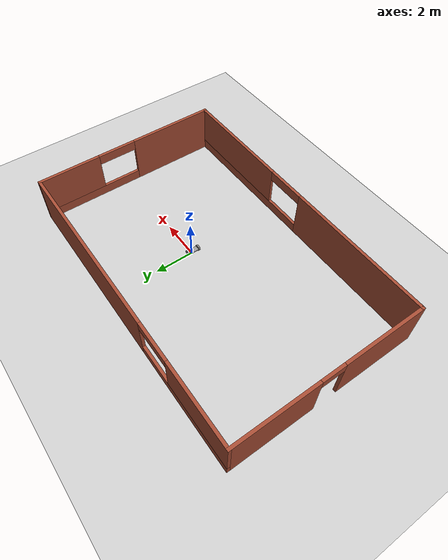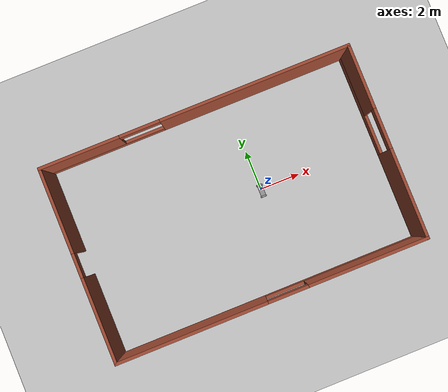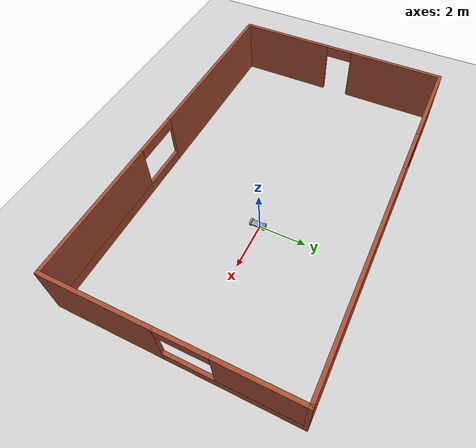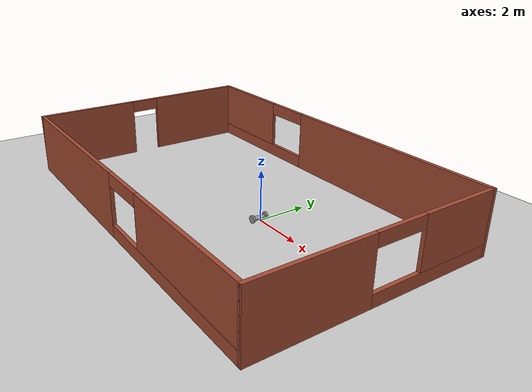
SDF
<sdf version="1.6">
 <world name="default">
  <model name="ground_plane">
   <static>1</static>
   <link name="link">
    <collision name="collision">
     <geometry><plane><normal>0 0 1</normal><size>100 100</size></plane></geometry>
     <surface><friction><ode><mu>100</mu><mu2>50</mu2></ode></friction></surface>
    </collision>
    <visual name="visual">
     <cast_shadows>0</cast_shadows>
     <geometry><plane><normal>0 0 1</normal><size>100 100</size></plane></geometry>
     <material>
      <script><uri>file://media/materials/scripts/gazebo.material</uri><name>Gazebo/Grey</name></script>
     </material>
    </visual>
   </link>
  </model>
  <model name="myrobot">
   <link name="link_2">
    <pose>0 0.290015 0 1.5707 -0 0</pose>
    <inertial>
     <mass>0.0501056</mass>
     <inertia>
      <ixx>0.00149856</ixx>
      <ixy>0</ixy>
      <ixz>0</ixz>
      <iyy>0.00149856</iyy>
      <iyz>0</iyz>
      <izz>0.00289929</izz>
     </inertia>
    </inertial>
    <visual name="visual">
     <geometry><cylinder><radius>0.15</radius><length>0.0800003</length></cylinder></geometry>
     <material>
      <lighting>1</lighting>
      <script><uri>file://media/materials/scripts/gazebo.material</uri><name>Gazebo/Grey</name></script>
      <ambient>0.3 0.3 0.3 1</ambient>
      <diffuse>0.7 0.7 0.7 1</diffuse>
      <specular>0.01 0.01 0.01 1</specular>
      <emissive>0 0 0 1</emissive>
      <shader type="vertex"><normal_map>__default__</normal_map></shader>
     </material>
    </visual>
    <collision name="collision">
     <geometry><cylinder><radius>0.15</radius><length>0.08</length></cylinder></geometry>
     <surface>
      <friction>
       <ode><mu>1</mu><mu2>1</mu2><fdir1>0 0 0</fdir1><slip1>0</slip1><slip2>0</slip2></ode>
       <torsional>
        <coefficient>1</coefficient>
        <patch_radius>0</patch_radius>
        <surface_radius>0</surface_radius>
        <use_patch_radius>1</use_patch_radius>
        <ode><slip>0</slip></ode>
       </torsional>
      </friction>
      <bounce><restitution_coefficient>0</restitution_coefficient><threshold>1e+06</threshold></bounce>
      <contact>
       <collide_without_contact>0</collide_without_contact>
       <collide_without_contact_bitmask>1</collide_without_contact_bitmask>
       <collide_bitmask>1</collide_bitmask>
       <ode>
        <soft_cfm>0</soft_cfm>
        <soft_erp>0.2</soft_erp>
        <kp>1e+13</kp>
        <kd>1</kd>
        <max_vel>0.01</max_vel>
        <min_depth>0</min_depth>
       </ode>
       <bullet>
        <split_impulse>1</split_impulse>
        <split_impulse_penetration_threshold>-0.01</split_impulse_penetration_threshold>
        <soft_cfm>0</soft_cfm>
        <soft_erp>0.2</soft_erp>
        <kp>1e+13</kp>
        <kd>1</kd>
       </bullet>
      </contact>
     </surface>
    </collision>
   </link>
   <link name="link_2_clone">
    <pose>0 -0.290014 0 1.5707 -0 0</pose>
    <inertial>
     <mass>0.0501056</mass>
     <inertia>
      <ixx>0.00149856</ixx>
      <ixy>0</ixy>
      <ixz>0</ixz>
      <iyy>0.00149856</iyy>
      <iyz>0</iyz>
      <izz>0.00289929</izz>
     </inertia>
    </inertial>
    <visual name="visual">
     <geometry><cylinder><radius>0.15</radius><length>0.0800003</length></cylinder></geometry>
     <material>
      <lighting>1</lighting>
      <script><uri>file://media/materials/scripts/gazebo.material</uri><name>Gazebo/Grey</name></script>
      <ambient>0.3 0.3 0.3 1</ambient>
      <diffuse>0.7 0.7 0.7 1</diffuse>
      <specular>0.01 0.01 0.01 1</specular>
      <emissive>0 0 0 1</emissive>
      <shader type="vertex"><normal_map>__default__</normal_map></shader>
     </material>
    </visual>
    <collision name="collision">
     <geometry><cylinder><radius>0.15</radius><length>0.08</length></cylinder></geometry>
     <surface>
      <friction>
       <ode><mu>1</mu><mu2>1</mu2><fdir1>0 0 0</fdir1><slip1>0</slip1><slip2>0</slip2></ode>
       <torsional>
        <coefficient>1</coefficient>
        <patch_radius>0</patch_radius>
        <surface_radius>0</surface_radius>
        <use_patch_radius>1</use_patch_radius>
        <ode><slip>0</slip></ode>
       </torsional>
      </friction>
      <bounce><restitution_coefficient>0</restitution_coefficient><threshold>1e+06</threshold></bounce>
      <contact>
       <collide_without_contact>0</collide_without_contact>
       <collide_without_contact_bitmask>1</collide_without_contact_bitmask>
       <collide_bitmask>1</collide_bitmask>
       <ode>
        <soft_cfm>0</soft_cfm>
        <soft_erp>0.2</soft_erp>
        <kp>1e+13</kp>
        <kd>1</kd>
        <max_vel>0.01</max_vel>
        <min_depth>0</min_depth>
       </ode>
       <bullet>
        <split_impulse>1</split_impulse>
        <split_impulse_penetration_threshold>-0.01</split_impulse_penetration_threshold>
        <soft_cfm>0</soft_cfm>
        <soft_erp>0.2</soft_erp>
        <kp>1e+13</kp>
        <kd>1</kd>
       </bullet>
      </contact>
     </surface>
    </collision>
   </link>
   <link name="link_3">
    <inertial>
     <mass>1</mass>
     <inertia>
      <ixx>0.166667</ixx>
      <ixy>0</ixy>
      <ixz>0</ixz>
      <iyy>0.166667</iyy>
      <iyz>0</iyz>
      <izz>0.166667</izz>
     </inertia>
    </inertial>
    <visual name="visual">
     <geometry><box><size>0.25 0.5 0.05</size></box></geometry>
     <material>
      <lighting>1</lighting>
      <script><uri>file://media/materials/scripts/gazebo.material</uri><name>Gazebo/Grey</name></script>
      <ambient>0.3 0.3 0.3 1</ambient>
      <diffuse>0.7 0.7 0.7 1</diffuse>
      <specular>0.01 0.01 0.01 1</specular>
      <emissive>0 0 0 1</emissive>
      <shader type="vertex"><normal_map>__default__</normal_map></shader>
     </material>
    </visual>
    <collision name="collision">
     <geometry><box><size>0.25 0.5 0.05</size></box></geometry>
     <surface>
      <friction>
       <ode><mu>1</mu><mu2>1</mu2><fdir1>0 0 0</fdir1><slip1>0</slip1><slip2>0</slip2></ode>
       <torsional>
        <coefficient>1</coefficient>
        <patch_radius>0</patch_radius>
        <surface_radius>0</surface_radius>
        <use_patch_radius>1</use_patch_radius>
        <ode><slip>0</slip></ode>
       </torsional>
      </friction>
      <bounce><restitution_coefficient>0</restitution_coefficient><threshold>1e+06</threshold></bounce>
      <contact>
       <collide_without_contact>0</collide_without_contact>
       <collide_without_contact_bitmask>1</collide_without_contact_bitmask>
       <collide_bitmask>1</collide_bitmask>
       <ode>
        <soft_cfm>0</soft_cfm>
        <soft_erp>0.2</soft_erp>
        <kp>1e+13</kp>
        <kd>1</kd>
        <max_vel>0.01</max_vel>
        <min_depth>0</min_depth>
       </ode>
       <bullet>
        <split_impulse>1</split_impulse>
        <split_impulse_penetration_threshold>-0.01</split_impulse_penetration_threshold>
        <soft_cfm>0</soft_cfm>
        <soft_erp>0.2</soft_erp>
        <kp>1e+13</kp>
        <kd>1</kd>
       </bullet>
      </contact>
     </surface>
    </collision>
   </link>
   <joint name="link_2_JOINT_1" type="revolute">
    <parent>link_3</parent>
    <child>link_2_clone</child>
    <axis>
     <xyz>0 0 1</xyz>
     <use_parent_model_frame>0</use_parent_model_frame>
     <limit>
      <lower>-1.79769e+308</lower>
      <upper>1.79769e+308</upper>
      <effort>-1</effort>
      <velocity>-1</velocity>
     </limit>
     <dynamics>
      <spring_reference>0</spring_reference>
      <spring_stiffness>0</spring_stiffness>
      <damping>0</damping>
     </dynamics>
    </axis>
    <physics>
     <ode><limit><cfm>0</cfm><erp>0.2</erp></limit><suspension><cfm>0</cfm><erp>0.2</erp></suspension></ode>
    </physics>
   </joint>
   <joint name="link_3_JOINT_2" type="revolute">
    <parent>link_3</parent>
    <child>link_2</child>
    <axis>
     <xyz>0 0 1</xyz>
     <use_parent_model_frame>0</use_parent_model_frame>
     <limit>
      <lower>-1.79769e+308</lower>
      <upper>1.79769e+308</upper>
      <effort>-1</effort>
      <velocity>-1</velocity>
     </limit>
     <dynamics>
      <spring_reference>0</spring_reference>
      <spring_stiffness>0</spring_stiffness>
      <damping>0</damping>
     </dynamics>
    </axis>
    <physics>
     <ode><limit><cfm>0</cfm><erp>0.2</erp></limit><suspension><cfm>0</cfm><erp>0.2</erp></suspension></ode>
    </physics>
   </joint>
   <static>0</static>
   <pose>0 -0.078524 0.149997 5e-06 -0 0</pose>
  </model>
  <model name="mybuilding">
   <pose>-1.56724 -0.21095 0 0 -0 0</pose>
   <link name="Wall_3">
    <pose>0 -4.8 0 0 -0 0</pose>
    <visual name="Wall_3_Visual_0">
     <pose>-3.97859 0 1.25 0 -0 0</pose>
     <geometry><box><size>7.54281 0.15 2.5</size></box></geometry>
     <material>
      <script><uri>file://media/materials/scripts/gazebo.material</uri><name>Gazebo/Bricks</name></script>
      <ambient>1 1 1 1</ambient>
     </material>
    </visual>
    <collision name="Wall_3_Collision_0">
     <geometry><box><size>7.54281 0.15 2.5</size></box></geometry>
     <pose>-3.97859 0 1.25 0 -0 0</pose>
    </collision>
    <visual name="Wall_3_Visual_1">
     <pose>3.77141 0 0.25 0 -0 0</pose>
     <geometry><box><size>7.95719 0.15 0.5</size></box></geometry>
     <material>
      <script><uri>file://media/materials/scripts/gazebo.material</uri><name>Gazebo/Bricks</name></script>
      <ambient>1 1 1 1</ambient>
     </material>
    </visual>
    <collision name="Wall_3_Collision_1">
     <geometry><box><size>7.95719 0.15 0.5</size></box></geometry>
     <pose>3.77141 0 0.25 0 -0 0</pose>
    </collision>
    <visual name="Wall_3_Visual_2">
     <pose>4.77141 0 1.5 0 -0 0</pose>
     <geometry><box><size>5.95719 0.15 2</size></box></geometry>
     <material>
      <script><uri>file://media/materials/scripts/gazebo.material</uri><name>Gazebo/Bricks</name></script>
      <ambient>1 1 1 1</ambient>
     </material>
    </visual>
    <collision name="Wall_3_Collision_2">
     <geometry><box><size>5.95719 0.15 2</size></box></geometry>
     <pose>4.77141 0 1.5 0 -0 0</pose>
    </collision>
    <visual name="Wall_3_Visual_3">
     <pose>0.792814 0 2.25 0 -0 0</pose>
     <geometry><box><size>2 0.15 0.5</size></box></geometry>
     <material>
      <script><uri>file://media/materials/scripts/gazebo.material</uri><name>Gazebo/Bricks</name></script>
      <ambient>1 1 1 1</ambient>
     </material>
    </visual>
    <collision name="Wall_3_Collision_3">
     <geometry><box><size>2 0.15 0.5</size></box></geometry>
     <pose>0.792814 0 2.25 0 -0 0</pose>
    </collision>
   </link>
   <link name="Wall_4">
    <pose>7.675 0 0 0 -0 1.5708</pose>
    <visual name="Wall_4_Visual_0">
     <pose>-2.62217 0 1.25 0 -0 0</pose>
     <geometry><box><size>4.50566 0.15 2.5</size></box></geometry>
     <material>
      <script><uri>file://media/materials/scripts/gazebo.material</uri><name>Gazebo/Bricks</name></script>
      <ambient>1 1 1 1</ambient>
     </material>
    </visual>
    <collision name="Wall_4_Collision_0">
     <geometry><box><size>4.50566 0.15 2.5</size></box></geometry>
     <pose>-2.62217 0 1.25 0 -0 0</pose>
    </collision>
    <visual name="Wall_4_Visual_1">
     <pose>2.25283 0 0.25 0 -0 0</pose>
     <geometry><box><size>5.24434 0.15 0.5</size></box></geometry>
     <material>
      <script><uri>file://media/materials/scripts/gazebo.material</uri><name>Gazebo/Bricks</name></script>
      <ambient>1 1 1 1</ambient>
     </material>
    </visual>
    <collision name="Wall_4_Collision_1">
     <geometry><box><size>5.24434 0.15 0.5</size></box></geometry>
     <pose>2.25283 0 0.25 0 -0 0</pose>
    </collision>
    <visual name="Wall_4_Visual_2">
     <pose>3.25283 0 1.5 0 -0 0</pose>
     <geometry><box><size>3.24434 0.15 2</size></box></geometry>
     <material>
      <script><uri>file://media/materials/scripts/gazebo.material</uri><name>Gazebo/Bricks</name></script>
      <ambient>1 1 1 1</ambient>
     </material>
    </visual>
    <collision name="Wall_4_Collision_2">
     <geometry><box><size>3.24434 0.15 2</size></box></geometry>
     <pose>3.25283 0 1.5 0 -0 0</pose>
    </collision>
    <visual name="Wall_4_Visual_3">
     <pose>0.630664 0 2.25 0 -0 0</pose>
     <geometry><box><size>2 0.15 0.5</size></box></geometry>
     <material>
      <script><uri>file://media/materials/scripts/gazebo.material</uri><name>Gazebo/Bricks</name></script>
      <ambient>1 1 1 1</ambient>
     </material>
    </visual>
    <collision name="Wall_4_Collision_3">
     <geometry><box><size>2 0.15 0.5</size></box></geometry>
     <pose>0.630664 0 2.25 0 -0 0</pose>
    </collision>
   </link>
   <link name="Wall_5">
    <pose>0 4.8 0 0 -0 3.14159</pose>
    <visual name="Wall_5_Visual_0">
     <pose>-3.01147 0 1.25 0 -0 0</pose>
     <geometry><box><size>9.47706 0.15 2.5</size></box></geometry>
     <material>
      <script><uri>file://media/materials/scripts/gazebo.material</uri><name>Gazebo/Bricks</name></script>
      <ambient>1 1 1 1</ambient>
     </material>
    </visual>
    <collision name="Wall_5_Collision_0">
     <geometry><box><size>9.47706 0.15 2.5</size></box></geometry>
     <pose>-3.01147 0 1.25 0 -0 0</pose>
    </collision>
    <visual name="Wall_5_Visual_1">
     <pose>4.73853 0 0.25 0 -0 0</pose>
     <geometry><box><size>6.02294 0.15 0.5</size></box></geometry>
     <material>
      <script><uri>file://media/materials/scripts/gazebo.material</uri><name>Gazebo/Bricks</name></script>
      <ambient>1 1 1 1</ambient>
     </material>
    </visual>
    <collision name="Wall_5_Collision_1">
     <geometry><box><size>6.02294 0.15 0.5</size></box></geometry>
     <pose>4.73853 0 0.25 0 -0 0</pose>
    </collision>
    <visual name="Wall_5_Visual_2">
     <pose>5.73853 0 1.5 0 -0 0</pose>
     <geometry><box><size>4.02294 0.15 2</size></box></geometry>
     <material>
      <script><uri>file://media/materials/scripts/gazebo.material</uri><name>Gazebo/Bricks</name></script>
      <ambient>1 1 1 1</ambient>
     </material>
    </visual>
    <collision name="Wall_5_Collision_2">
     <geometry><box><size>4.02294 0.15 2</size></box></geometry>
     <pose>5.73853 0 1.5 0 -0 0</pose>
    </collision>
    <visual name="Wall_5_Visual_3">
     <pose>2.72706 0 2.25 0 -0 0</pose>
     <geometry><box><size>2 0.15 0.5</size></box></geometry>
     <material>
      <script><uri>file://media/materials/scripts/gazebo.material</uri><name>Gazebo/Bricks</name></script>
      <ambient>1 1 1 1</ambient>
     </material>
    </visual>
    <collision name="Wall_5_Collision_3">
     <geometry><box><size>2 0.15 0.5</size></box></geometry>
     <pose>2.72706 0 2.25 0 -0 0</pose>
    </collision>
   </link>
   <link name="Wall_6">
    <pose>-7.675 0 0 0 0 -1.5708</pose>
    <visual name="Wall_6_Visual_0">
     <pose>-2.74107 0 1.25 0 -0 0</pose>
     <geometry><box><size>4.26786 0.15 2.5</size></box></geometry>
     <material>
      <script><uri>file://media/materials/scripts/gazebo.material</uri><name>Gazebo/Bricks</name></script>
      <ambient>1 1 1 1</ambient>
     </material>
    </visual>
    <collision name="Wall_6_Collision_0">
     <geometry><box><size>4.26786 0.15 2.5</size></box></geometry>
     <pose>-2.74107 0 1.25 0 -0 0</pose>
    </collision>
    <visual name="Wall_6_Visual_1">
     <pose>2.73393 0 1.25 0 -0 0</pose>
     <geometry><box><size>4.28214 0.15 2.5</size></box></geometry>
     <material>
      <script><uri>file://media/materials/scripts/gazebo.material</uri><name>Gazebo/Bricks</name></script>
      <ambient>1 1 1 1</ambient>
     </material>
    </visual>
    <collision name="Wall_6_Collision_1">
     <geometry><box><size>4.28214 0.15 2.5</size></box></geometry>
     <pose>2.73393 0 1.25 0 -0 0</pose>
    </collision>
    <visual name="Wall_6_Visual_2">
     <pose>-0.007144 0 2.25 0 -0 0</pose>
     <geometry><box><size>1.2 0.15 0.5</size></box></geometry>
     <material>
      <script><uri>file://media/materials/scripts/gazebo.material</uri><name>Gazebo/Bricks</name></script>
      <ambient>1 1 1 1</ambient>
     </material>
    </visual>
    <collision name="Wall_6_Collision_2">
     <geometry><box><size>1.2 0.15 0.5</size></box></geometry>
     <pose>-0.007144 0 2.25 0 -0 0</pose>
    </collision>
   </link>
   <static>1</static>
  </model>
 </world>
</sdf>
